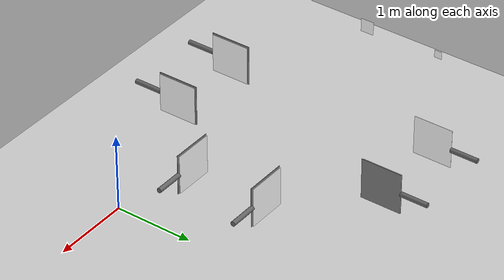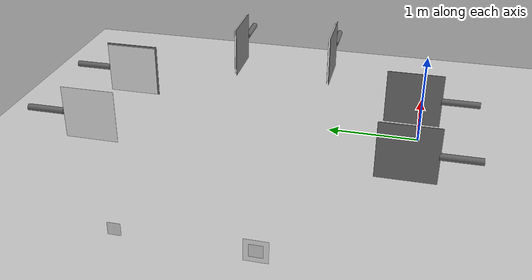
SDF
<?xml version="1.0"?>

<sdf version="1.6">
  <world name="default">

    <plugin filename="gz-sim-physics-system" name="gz::sim::systems::Physics"/>
    <plugin filename="gz-sim-user-commands-system" name="gz::sim::systems::UserCommands"/>
    <plugin filename="gz-sim-scene-broadcaster-system" name="gz::sim::systems::SceneBroadcaster"/>
    <plugin filename="gz-sim-sensors-system" name="gz::sim::systems::Sensors">
      <render_engine>ogre2</render_engine>
    </plugin>

    <!-- Tweak to run at higher or lower speeds -->
    <physics name="normal" type="ode">
      <real_time_update_rate>1000</real_time_update_rate>
      <max_step_size>0.001</max_step_size>
    </physics>

    <!-- Ground plane -->
    <include>
      <uri>model://ground_plane</uri>
    </include>

    <!-- Lighting -->
    <include>
      <uri>model://sun</uri>
    </include>

    <!-- ArUco markers -->
    <model name="marker0">
      <include>
        <static>true</static>
        <uri>model://marker_0</uri>
      </include>
      <pose>0.5 1 1 0 -1.5707963267948966 0</pose>
    </model>
    <model name="marker1">
      <include>
        <static>true</static>
        <uri>model://marker_1</uri>
      </include>
      <pose>0.5 2 1 0 -1.5707963267948966 0</pose>
    </model>
    <model name="marker2">
      <include>
        <static>true</static>
        <uri>model://marker_2</uri>
      </include>
      <pose>-1 -0.5 1 0 -1.5707963267948966 -1.5707963267948966</pose>
    </model>
    <model name="marker3">
      <include>
        <static>true</static>
        <uri>model://marker_3</uri>
      </include>
      <pose>-2 -0.5 1 0 -1.5707963267948966 -1.5707963267948966</pose>
    </model>
    <model name="marker4">
      <include>
        <static>true</static>
        <uri>model://marker_4</uri>
      </include>
      <pose>-1 3.5 1 0 -1.5707963267948966 1.5707963267948966</pose>
    </model>
    <model name="marker5">
      <include>
        <static>true</static>
        <uri>model://marker_5</uri>
      </include>
      <pose>-2 3.5 1 0 -1.5707963267948966 1.5707963267948966</pose>
    </model>
    <model name="marker6">
      <include>
        <static>true</static>
        <uri>model://marker_6</uri>
      </include>
      <pose>-3.5 2 1 0 -1.5707963267948966 3.141592653589793</pose>
    </model>
    <model name="marker7">
      <include>
        <static>true</static>
        <uri>model://marker_7</uri>
      </include>
      <pose>-3.5 1 1 0 -1.5707963267948966 3.141592653589793</pose>
    </model>

  </world>
</sdf>

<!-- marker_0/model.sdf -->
<sdf version="1.6">
  <model name="aruco_marker_0">
    <static>true</static>
    <link name="link">
      <!-- Support pole: top reaches the panel's lower edge (0.35 m), no overlap -->
      <visual name="pole">
        <pose>0 0 0.175 0 0 0</pose>
        <geometry><cylinder><radius>0.03</radius><length>0.35</length></cylinder></geometry>
        <material>
          <ambient>0.3 0.3 0.3 1</ambient>
          <diffuse>0.4 0.4 0.4 1</diffuse>
          <specular>0.1 0.1 0.1 1</specular>
        </material>
      </visual>
      <collision name="pole_col">
        <pose>0 0 0.175 0 0 0</pose>
        <geometry><cylinder><radius>0.03</radius><length>0.35</length></cylinder></geometry>
      </collision>
      <!-- Marker panel 0.50 m, center 0.6 m high; lower edge at 0.35 m -->
      <!-- Local +Y face carries the texture; world yaw aims it inward. -->
      <visual name="marker">
        <pose>0 0.011 0.6 1.5708 0 0</pose>
        <geometry><box><size>0.50 0.50 0.002</size></box></geometry>
        <material>
          <ambient>1.0 1.0 1.0 1</ambient>
          <diffuse>1.0 1.0 1.0 1</diffuse>
          <specular>0.0 0.0 0.0 1</specular>
          <pbr>
            <metal>
              <albedo_map>model://aruco/marker_0/materials/textures/marker_0.png</albedo_map>
              <metalness>0.0</metalness>
              <roughness>1.0</roughness>
            </metal>
          </pbr>
        </material>
      </visual>
      <collision name="marker_col">
        <pose>0 0 0.6 0 0 0</pose>
        <geometry><box><size>0.50 0.04 0.52</size></box></geometry>
      </collision>
      <!-- Opaque gray backing on the local -Y side: occludes the texture from
           behind so a camera facing the back cannot detect a mirrored (flipped) marker. -->
      <visual name="back_panel">
        <pose>0 -0.01 0.6 1.5708 0 0</pose>
        <geometry><box><size>0.52 0.52 0.005</size></box></geometry>
        <material>
          <ambient>0.5 0.5 0.5 1</ambient>
          <diffuse>0.5 0.5 0.5 1</diffuse>
          <specular>0.1 0.1 0.1 1</specular>
        </material>
      </visual>
    </link>
  </model>
</sdf>

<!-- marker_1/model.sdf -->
<sdf version="1.6">
  <model name="aruco_marker_1">
    <static>true</static>
    <link name="link">
      <!-- Support pole: top reaches the panel's lower edge (0.35 m), no overlap -->
      <visual name="pole">
        <pose>0 0 0.175 0 0 0</pose>
        <geometry><cylinder><radius>0.03</radius><length>0.35</length></cylinder></geometry>
        <material>
          <ambient>0.3 0.3 0.3 1</ambient>
          <diffuse>0.4 0.4 0.4 1</diffuse>
          <specular>0.1 0.1 0.1 1</specular>
        </material>
      </visual>
      <collision name="pole_col">
        <pose>0 0 0.175 0 0 0</pose>
        <geometry><cylinder><radius>0.03</radius><length>0.35</length></cylinder></geometry>
      </collision>
      <!-- Marker panel 0.50 m, center 0.6 m high; lower edge at 0.35 m -->
      <!-- Local +Y face carries the texture; world yaw aims it inward. -->
      <visual name="marker">
        <pose>0 0.011 0.6 1.5708 0 0</pose>
        <geometry><box><size>0.50 0.50 0.002</size></box></geometry>
        <material>
          <ambient>1.0 1.0 1.0 1</ambient>
          <diffuse>1.0 1.0 1.0 1</diffuse>
          <specular>0.0 0.0 0.0 1</specular>
          <pbr>
            <metal>
              <albedo_map>model://aruco/marker_1/materials/textures/marker_1.png</albedo_map>
              <metalness>0.0</metalness>
              <roughness>1.0</roughness>
            </metal>
          </pbr>
        </material>
      </visual>
      <collision name="marker_col">
        <pose>0 0 0.6 0 0 0</pose>
        <geometry><box><size>0.50 0.04 0.52</size></box></geometry>
      </collision>
      <!-- Opaque gray backing on the local -Y side: occludes the texture from
           behind so a camera facing the back cannot detect a mirrored (flipped) marker. -->
      <visual name="back_panel">
        <pose>0 -0.01 0.6 1.5708 0 0</pose>
        <geometry><box><size>0.52 0.52 0.005</size></box></geometry>
        <material>
          <ambient>0.5 0.5 0.5 1</ambient>
          <diffuse>0.5 0.5 0.5 1</diffuse>
          <specular>0.1 0.1 0.1 1</specular>
        </material>
      </visual>
    </link>
  </model>
</sdf>

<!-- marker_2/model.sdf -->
<sdf version="1.6">
  <model name="aruco_marker_2">
    <static>true</static>
    <link name="link">
      <!-- Support pole: top reaches the panel's lower edge (0.35 m), no overlap -->
      <visual name="pole">
        <pose>0 0 0.175 0 0 0</pose>
        <geometry><cylinder><radius>0.03</radius><length>0.35</length></cylinder></geometry>
        <material>
          <ambient>0.3 0.3 0.3 1</ambient>
          <diffuse>0.4 0.4 0.4 1</diffuse>
          <specular>0.1 0.1 0.1 1</specular>
        </material>
      </visual>
      <collision name="pole_col">
        <pose>0 0 0.175 0 0 0</pose>
        <geometry><cylinder><radius>0.03</radius><length>0.35</length></cylinder></geometry>
      </collision>
      <!-- Marker panel 0.50 m, center 0.6 m high; lower edge at 0.35 m -->
      <!-- Local +Y face carries the texture; world yaw aims it inward. -->
      <visual name="marker">
        <pose>0 0.011 0.6 1.5708 0 0</pose>
        <geometry><box><size>0.50 0.50 0.002</size></box></geometry>
        <material>
          <ambient>1.0 1.0 1.0 1</ambient>
          <diffuse>1.0 1.0 1.0 1</diffuse>
          <specular>0.0 0.0 0.0 1</specular>
          <pbr>
            <metal>
              <albedo_map>model://aruco/marker_2/materials/textures/marker_2.png</albedo_map>
              <metalness>0.0</metalness>
              <roughness>1.0</roughness>
            </metal>
          </pbr>
        </material>
      </visual>
      <collision name="marker_col">
        <pose>0 0 0.6 0 0 0</pose>
        <geometry><box><size>0.50 0.04 0.52</size></box></geometry>
      </collision>
      <!-- Opaque gray backing on the local -Y side: occludes the texture from
           behind so a camera facing the back cannot detect a mirrored (flipped) marker. -->
      <visual name="back_panel">
        <pose>0 -0.01 0.6 1.5708 0 0</pose>
        <geometry><box><size>0.52 0.52 0.005</size></box></geometry>
        <material>
          <ambient>0.5 0.5 0.5 1</ambient>
          <diffuse>0.5 0.5 0.5 1</diffuse>
          <specular>0.1 0.1 0.1 1</specular>
        </material>
      </visual>
    </link>
  </model>
</sdf>

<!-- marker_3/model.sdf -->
<sdf version="1.6">
  <model name="aruco_marker_3">
    <static>true</static>
    <link name="link">
      <!-- Support pole: top reaches the panel's lower edge (0.35 m), no overlap -->
      <visual name="pole">
        <pose>0 0 0.175 0 0 0</pose>
        <geometry><cylinder><radius>0.03</radius><length>0.35</length></cylinder></geometry>
        <material>
          <ambient>0.3 0.3 0.3 1</ambient>
          <diffuse>0.4 0.4 0.4 1</diffuse>
          <specular>0.1 0.1 0.1 1</specular>
        </material>
      </visual>
      <collision name="pole_col">
        <pose>0 0 0.175 0 0 0</pose>
        <geometry><cylinder><radius>0.03</radius><length>0.35</length></cylinder></geometry>
      </collision>
      <!-- Marker panel 0.50 m, center 0.6 m high; lower edge at 0.35 m -->
      <!-- Local +Y face carries the texture; world yaw aims it inward. -->
      <visual name="marker">
        <pose>0 0.011 0.6 1.5708 0 0</pose>
        <geometry><box><size>0.50 0.50 0.002</size></box></geometry>
        <material>
          <ambient>1.0 1.0 1.0 1</ambient>
          <diffuse>1.0 1.0 1.0 1</diffuse>
          <specular>0.0 0.0 0.0 1</specular>
          <pbr>
            <metal>
              <albedo_map>model://aruco/marker_3/materials/textures/marker_3.png</albedo_map>
              <metalness>0.0</metalness>
              <roughness>1.0</roughness>
            </metal>
          </pbr>
        </material>
      </visual>
      <collision name="marker_col">
        <pose>0 0 0.6 0 0 0</pose>
        <geometry><box><size>0.50 0.04 0.52</size></box></geometry>
      </collision>
      <!-- Opaque gray backing on the local -Y side: occludes the texture from
           behind so a camera facing the back cannot detect a mirrored (flipped) marker. -->
      <visual name="back_panel">
        <pose>0 -0.01 0.6 1.5708 0 0</pose>
        <geometry><box><size>0.52 0.52 0.005</size></box></geometry>
        <material>
          <ambient>0.5 0.5 0.5 1</ambient>
          <diffuse>0.5 0.5 0.5 1</diffuse>
          <specular>0.1 0.1 0.1 1</specular>
        </material>
      </visual>
    </link>
  </model>
</sdf>

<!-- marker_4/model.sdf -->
<sdf version="1.6">
  <model name="aruco_marker_4">
    <static>true</static>
    <link name="link">
      <!-- Support pole: top reaches the panel's lower edge (0.35 m), no overlap -->
      <visual name="pole">
        <pose>0 0 0.175 0 0 0</pose>
        <geometry><cylinder><radius>0.03</radius><length>0.35</length></cylinder></geometry>
        <material>
          <ambient>0.3 0.3 0.3 1</ambient>
          <diffuse>0.4 0.4 0.4 1</diffuse>
          <specular>0.1 0.1 0.1 1</specular>
        </material>
      </visual>
      <collision name="pole_col">
        <pose>0 0 0.175 0 0 0</pose>
        <geometry><cylinder><radius>0.03</radius><length>0.35</length></cylinder></geometry>
      </collision>
      <!-- Marker panel 0.50 m, center 0.6 m high; lower edge at 0.35 m -->
      <!-- Local +Y face carries the texture; world yaw aims it inward. -->
      <visual name="marker">
        <pose>0 0.011 0.6 1.5708 0 0</pose>
        <geometry><box><size>0.50 0.50 0.002</size></box></geometry>
        <material>
          <ambient>1.0 1.0 1.0 1</ambient>
          <diffuse>1.0 1.0 1.0 1</diffuse>
          <specular>0.0 0.0 0.0 1</specular>
          <pbr>
            <metal>
              <albedo_map>model://aruco/marker_4/materials/textures/marker_4.png</albedo_map>
              <metalness>0.0</metalness>
              <roughness>1.0</roughness>
            </metal>
          </pbr>
        </material>
      </visual>
      <collision name="marker_col">
        <pose>0 0 0.6 0 0 0</pose>
        <geometry><box><size>0.50 0.04 0.52</size></box></geometry>
      </collision>
      <!-- Opaque gray backing on the local -Y side: occludes the texture from
           behind so a camera facing the back cannot detect a mirrored (flipped) marker. -->
      <visual name="back_panel">
        <pose>0 -0.01 0.6 1.5708 0 0</pose>
        <geometry><box><size>0.52 0.52 0.005</size></box></geometry>
        <material>
          <ambient>0.5 0.5 0.5 1</ambient>
          <diffuse>0.5 0.5 0.5 1</diffuse>
          <specular>0.1 0.1 0.1 1</specular>
        </material>
      </visual>
    </link>
  </model>
</sdf>

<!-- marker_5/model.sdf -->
<sdf version="1.6">
  <model name="aruco_marker_5">
    <static>true</static>
    <link name="link">
      <!-- Support pole: top reaches the panel's lower edge (0.35 m), no overlap -->
      <visual name="pole">
        <pose>0 0 0.175 0 0 0</pose>
        <geometry><cylinder><radius>0.03</radius><length>0.35</length></cylinder></geometry>
        <material>
          <ambient>0.3 0.3 0.3 1</ambient>
          <diffuse>0.4 0.4 0.4 1</diffuse>
          <specular>0.1 0.1 0.1 1</specular>
        </material>
      </visual>
      <collision name="pole_col">
        <pose>0 0 0.175 0 0 0</pose>
        <geometry><cylinder><radius>0.03</radius><length>0.35</length></cylinder></geometry>
      </collision>
      <!-- Marker panel 0.50 m, center 0.6 m high; lower edge at 0.35 m -->
      <!-- Local +Y face carries the texture; world yaw aims it inward. -->
      <visual name="marker">
        <pose>0 0.011 0.6 1.5708 0 0</pose>
        <geometry><box><size>0.50 0.50 0.002</size></box></geometry>
        <material>
          <ambient>1.0 1.0 1.0 1</ambient>
          <diffuse>1.0 1.0 1.0 1</diffuse>
          <specular>0.0 0.0 0.0 1</specular>
          <pbr>
            <metal>
              <albedo_map>model://aruco/marker_5/materials/textures/marker_5.png</albedo_map>
              <metalness>0.0</metalness>
              <roughness>1.0</roughness>
            </metal>
          </pbr>
        </material>
      </visual>
      <collision name="marker_col">
        <pose>0 0 0.6 0 0 0</pose>
        <geometry><box><size>0.50 0.04 0.52</size></box></geometry>
      </collision>
    </link>
  </model>
</sdf>

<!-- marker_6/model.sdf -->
<sdf version="1.6">
    <model name="marker_6">
         <link name='marker'>
            <pose frame=''>0 0 0 0 0 0</pose>
            <visual name='visual'>
                <geometry>
                    <box>
                        <size>0.1 0.1 1e-5</size>
                    </box>
                </geometry>
                <material>
                    <script>
                        <uri>model://marker_6/materials/scripts</uri>
                        <uri>model://marker_6/materials/textures</uri>
                        <name>marker_material6</name>
                    </script>
                    <ambient>1 1 1 1</ambient>
                    <diffuse>1 1 1 1</diffuse>
                    <specular>0 0 0 1</specular>
                    <emissive>1 1 1 0</emissive>
                </material>
                <pose frame=''>0 0 0 0 -0 0</pose>
                <cast_shadows>1</cast_shadows>
                <transparency>0</transparency>
            </visual>
            <collision name='collision'>
                <laser_retro>0</laser_retro>
                <max_contacts>10</max_contacts>
                <pose frame=''>0 0 0 0 -0 0</pose>
                <geometry>
                    <box>
                        <size>0.1 0.1 1e-05</size>
                    </box>
                </geometry>
            </collision>
        </link>

        <link name='marker_pad'>
            <pose frame='marker'>0 0 -1e-5 0 -0 0</pose>
            <visual name='visual'>
                <geometry>
                    <box>
                        <size>0.1 0.1 1e-5</size>
                    </box>
                </geometry>
                <material>
                    <lighting>1</lighting>
                    <script>
                        <uri>file://media/materials/scripts/gazebo.material</uri>
                        <name>Gazebo/White</name>
                    </script>
                    <ambient>0.3 0.3 0.3 1</ambient>
                    <diffuse>0.7 0.7 0.7 1</diffuse>
                    <specular>0.01 0.01 0.01 1</specular>
                    <emissive>1 1 1 0</emissive>
                </material>
                <cast_shadows>1</cast_shadows>
                <transparency>0</transparency>
            </visual>
            <collision name='collision'>
                <laser_retro>0</laser_retro>
                <max_contacts>10</max_contacts>
                <pose frame=''>0 0 0 0 -0 0</pose>
                <geometry>
                    <box>
                        <size>0.1 0.1 1e-5</size>
                    </box>
                </geometry>
            </collision>
        </link>

        <joint name='marker_JOINT_marker_pad' type='revolute'>
            <parent>marker</parent>
            <child>marker_pad</child>
            <pose frame=''>0 0 0 0 -0 0</pose>
            <axis>
                <xyz>0 0 1</xyz>
                <limit>
                    <upper>0</upper>
                    <lower>0</lower>
                </limit>
            </axis>
        </joint>

        <static>1</static>
        <allow_auto_disable>1</allow_auto_disable>

    </model>
</sdf>

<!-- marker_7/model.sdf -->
<sdf version="1.6">
        <model name="marker_7">
            <link name='marker'>
                <pose frame=''>0 0 0 0 0 0</pose>
                <visual name='visual'>
                    <geometry>
                        <box>
                            <size>0.1778 0.1778 1e-5</size>
                        </box>
                    </geometry>
                    <material>
                        <script>
                            <uri>model://marker_7/materials/scripts</uri>
                            <uri>model://marker_7/materials/textures</uri>
                            <name>ArucoVisualMarker7/Marker</name>
                        </script>
                        <ambient>1 1 1 1</ambient>
                        <diffuse>1 1 1 1</diffuse>
                        <specular>0 0 0 1</specular>
                        <emissive>1 1 1 0</emissive>
                        <shader type='vertex'>
                            <normal_map>__default__</normal_map>
                        </shader>
                    </material>
                    <pose frame=''>0 0 0 0 -0 0</pose>
                    <cast_shadows>1</cast_shadows>
                    <transparency>0</transparency>
                </visual>
                <collision name='collision'>
                    <laser_retro>0</laser_retro>
                    <max_contacts>10</max_contacts>
                    <pose frame=''>0 0 0 0 -0 0</pose>
                    <geometry>
                        <box>
                            <size>0.1 0.1 1e-05</size>
                        </box>
                    </geometry>
                </collision>
            </link>

            <link name='marker_pad'>
                <pose frame='marker'>0 0 -1e-5 0 -0 0</pose>
                <visual name='visual'>
                    <geometry>
                        <box>
                            <size>0.1 0.1 1e-5</size>
                        </box>
                    </geometry>
                    <material>
                        <lighting>1</lighting>
                        <script>
                            <uri>file://media/materials/scripts/gazebo.material</uri>
                            <name>Gazebo/White</name>
                        </script>
                        <ambient>0.3 0.3 0.3 1</ambient>
                        <diffuse>0.7 0.7 0.7 1</diffuse>
                        <specular>0.01 0.01 0.01 1</specular>
                        <emissive>1 1 1 0</emissive>
                        <shader type='vertex'>
                            <normal_map>__default__</normal_map>
                        </shader>
                    </material>
                    <cast_shadows>1</cast_shadows>
                    <transparency>0</transparency>
                </visual>
                <collision name='collision'>
                    <laser_retro>0</laser_retro>
                    <max_contacts>10</max_contacts>
                    <pose frame=''>0 0 0 0 -0 0</pose>
                    <geometry>
                        <box>
                            <size>0.1 0.1 1e-5</size>
                        </box>
                    </geometry>
                </collision>
            </link>

            <joint name='marker_JOINT_marker_pad' type='revolute'>
                <parent>marker</parent>
                <child>marker_pad</child>
                <pose frame=''>0 0 0 0 -0 0</pose>
                <axis>
                    <xyz>0 0 1</xyz>
                    <limit>
                        <upper>0</upper>
                        <lower>0</lower>
                    </limit>
                </axis>
            </joint>

            <static>1</static>
            <allow_auto_disable>1</allow_auto_disable>

        </model>
    </sdf>
